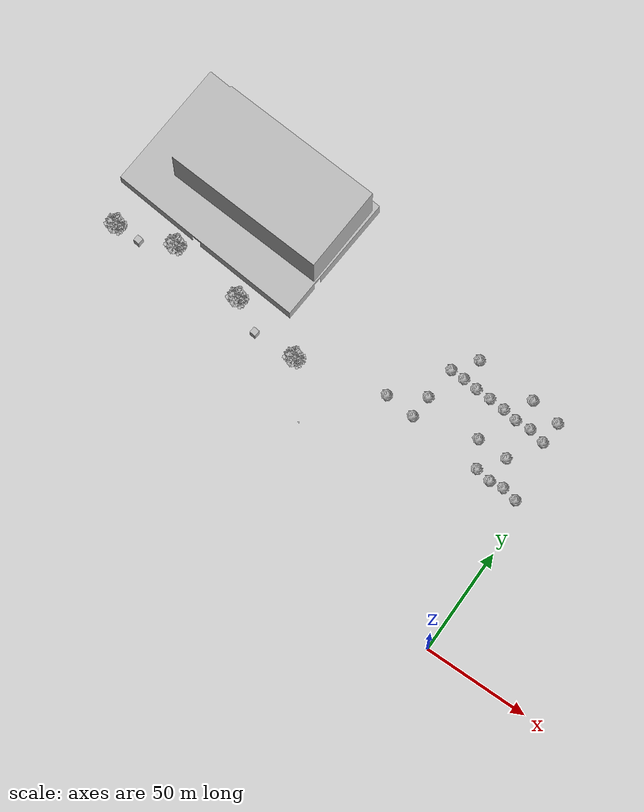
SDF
<sdf version="1.7">
 <world name="default">
  <include>
   <uri>model://momo</uri>
   <pose>-101.465143 50.128662 0.403297 0.000031 0.013149 -3.049204</pose>
  </include>
  <model name="cityhall_box">
   <static>1</static>
   <link name="link">
    <collision name="collision">
     <geometry><mesh><uri>model://cityhall_box/meshes/cityhall_box.dae</uri></mesh></geometry>
    </collision>
    <visual name="visual">
     <geometry><mesh><uri>model://cityhall_box/meshes/cityhall_box.dae</uri></mesh></geometry>
    </visual>
   </link>
   <pose>-139.446 71.3705 0 0 -0 0</pose>
  </model>
  <model name="cityhall_box_0">
   <static>1</static>
   <link name="link">
    <collision name="collision">
     <geometry><mesh><uri>model://cityhall_box/meshes/cityhall_box.dae</uri></mesh></geometry>
    </collision>
    <visual name="visual">
     <geometry><mesh><uri>model://cityhall_box/meshes/cityhall_box.dae</uri></mesh></geometry>
    </visual>
   </link>
   <pose>-204.406 76.3517 0 0 -0 0</pose>
  </model>
  <model name="cityhall">
   <static>1</static>
   <link name="link">
    <collision name="collision">
     <geometry>
      <mesh><uri>model://cityhall/meshes/cityhall.dae</uri><scale>0.8052 0.8052 0.8052</scale></mesh>
     </geometry>
    </collision>
    <visual name="visual">
     <geometry>
      <mesh><uri>model://cityhall/meshes/cityhall.dae</uri><scale>0.8052 0.8052 0.8052</scale></mesh>
     </geometry>
    </visual>
   </link>
   <pose>-171.893 123.643 0 0 -0 0</pose>
  </model>
  <model name="Tree_4_94">
   <static>1</static>
   <pose>-118.787 71.9931 0 0 -0 0</pose>
   <link name="Tree_4">
    <visual name="Tree_4"><geometry><mesh><uri>model://Tree_4/Tree_4.dae</uri></mesh></geometry></visual>
    <collision name="Tree_4"><geometry><mesh><uri>model://Tree_4/Tree_4.dae</uri></mesh></geometry></collision>
   </link>
  </model>
  <model name="Tree_4_95">
   <static>1</static>
   <pose>-154.302 79.812 0 0 -0 0</pose>
   <link name="Tree_4">
    <visual name="Tree_4"><geometry><mesh><uri>model://Tree_4/Tree_4.dae</uri></mesh></geometry></visual>
    <collision name="Tree_4"><geometry><mesh><uri>model://Tree_4/Tree_4.dae</uri></mesh></geometry></collision>
   </link>
  </model>
  <model name="Tree_4_96">
   <static>1</static>
   <pose>-189.904 83.9243 0 0 -0 0</pose>
   <link name="Tree_4">
    <visual name="Tree_4"><geometry><mesh><uri>model://Tree_4/Tree_4.dae</uri></mesh></geometry></visual>
    <collision name="Tree_4"><geometry><mesh><uri>model://Tree_4/Tree_4.dae</uri></mesh></geometry></collision>
   </link>
  </model>
  <model name="Tree_4_97">
   <static>1</static>
   <pose>-216.657 76.7299 0 0 -0 0</pose>
   <link name="Tree_4">
    <visual name="Tree_4"><geometry><mesh><uri>model://Tree_4/Tree_4.dae</uri></mesh></geometry></visual>
    <collision name="Tree_4"><geometry><mesh><uri>model://Tree_4/Tree_4.dae</uri></mesh></geometry></collision>
   </link>
  </model>
  <model name="Tree_3_50">
   <static>1</static>
   <pose>-18.3109 87.5223 0 0 -0 0</pose>
   <link name="Tree_3">
    <visual name="Tree_3"><geometry><mesh><uri>model://Tree_3/Tree.dae</uri></mesh></geometry></visual>
    <collision name="Tree_3"><geometry><mesh><uri>model://Tree_3/Tree.dae</uri></mesh></geometry></collision>
   </link>
  </model>
  <model name="Tree_3_51">
   <static>1</static>
   <pose>-33.0142 87.6679 0 0 -0 0</pose>
   <link name="Tree_3">
    <visual name="Tree_3"><geometry><mesh><uri>model://Tree_3/Tree.dae</uri></mesh></geometry></visual>
    <collision name="Tree_3"><geometry><mesh><uri>model://Tree_3/Tree.dae</uri></mesh></geometry></collision>
   </link>
  </model>
  <model name="Tree_3_52">
   <static>1</static>
   <pose>-8.5683 112.741 0 0 -0 0</pose>
   <link name="Tree_3">
    <visual name="Tree_3"><geometry><mesh><uri>model://Tree_3/Tree.dae</uri></mesh></geometry></visual>
    <collision name="Tree_3"><geometry><mesh><uri>model://Tree_3/Tree.dae</uri></mesh></geometry></collision>
   </link>
  </model>
  <model name="Tree_3_53">
   <static>1</static>
   <pose>-23.0086 115 0 0 -0 0</pose>
   <link name="Tree_3">
    <visual name="Tree_3"><geometry><mesh><uri>model://Tree_3/Tree.dae</uri></mesh></geometry></visual>
    <collision name="Tree_3"><geometry><mesh><uri>model://Tree_3/Tree.dae</uri></mesh></geometry></collision>
   </link>
  </model>
  <model name="Tree_3_54">
   <static>1</static>
   <pose>-51.9034 116.622 0 0 -0 0</pose>
   <link name="Tree_3">
    <visual name="Tree_3"><geometry><mesh><uri>model://Tree_3/Tree.dae</uri></mesh></geometry></visual>
    <collision name="Tree_3"><geometry><mesh><uri>model://Tree_3/Tree.dae</uri></mesh></geometry></collision>
   </link>
  </model>
  <model name="Tree_3_55">
   <static>1</static>
   <pose>-59.6369 106.135 0 0 -0 0</pose>
   <link name="Tree_3">
    <visual name="Tree_3"><geometry><mesh><uri>model://Tree_3/Tree.dae</uri></mesh></geometry></visual>
    <collision name="Tree_3"><geometry><mesh><uri>model://Tree_3/Tree.dae</uri></mesh></geometry></collision>
   </link>
  </model>
  <model name="Tree_3_56">
   <static>1</static>
   <pose>-52.9401 106.008 0 0 -0 0</pose>
   <link name="Tree_3">
    <visual name="Tree_3"><geometry><mesh><uri>model://Tree_3/Tree.dae</uri></mesh></geometry></visual>
    <collision name="Tree_3"><geometry><mesh><uri>model://Tree_3/Tree.dae</uri></mesh></geometry></collision>
   </link>
  </model>
  <model name="Tree_3_57">
   <static>1</static>
   <pose>-46.0505 105.401 0 0 -0 0</pose>
   <link name="Tree_3">
    <visual name="Tree_3"><geometry><mesh><uri>model://Tree_3/Tree.dae</uri></mesh></geometry></visual>
    <collision name="Tree_3"><geometry><mesh><uri>model://Tree_3/Tree.dae</uri></mesh></geometry></collision>
   </link>
  </model>
  <model name="Tree_3_58">
   <static>1</static>
   <pose>-38.7504 105.13 0 0 -0 0</pose>
   <link name="Tree_3">
    <visual name="Tree_3"><geometry><mesh><uri>model://Tree_3/Tree.dae</uri></mesh></geometry></visual>
    <collision name="Tree_3"><geometry><mesh><uri>model://Tree_3/Tree.dae</uri></mesh></geometry></collision>
   </link>
  </model>
  <model name="Tree_3_59">
   <static>1</static>
   <pose>-24.3825 103.636 0 0 -0 0</pose>
   <link name="Tree_3">
    <visual name="Tree_3"><geometry><mesh><uri>model://Tree_3/Tree.dae</uri></mesh></geometry></visual>
    <collision name="Tree_3"><geometry><mesh><uri>model://Tree_3/Tree.dae</uri></mesh></geometry></collision>
   </link>
  </model>
  <model name="Tree_3_60">
   <static>1</static>
   <pose>-31.2103 104.674 0 0 -0 0</pose>
   <link name="Tree_3">
    <visual name="Tree_3"><geometry><mesh><uri>model://Tree_3/Tree.dae</uri></mesh></geometry></visual>
    <collision name="Tree_3"><geometry><mesh><uri>model://Tree_3/Tree.dae</uri></mesh></geometry></collision>
   </link>
  </model>
  <model name="Tree_3_61">
   <static>1</static>
   <pose>-16.9523 103.855 0 0 -0 0</pose>
   <link name="Tree_3">
    <visual name="Tree_3"><geometry><mesh><uri>model://Tree_3/Tree.dae</uri></mesh></geometry></visual>
    <collision name="Tree_3"><geometry><mesh><uri>model://Tree_3/Tree.dae</uri></mesh></geometry></collision>
   </link>
  </model>
  <model name="Tree_3_62">
   <static>1</static>
   <pose>-9.24663 102.156 0 0 -0 0</pose>
   <link name="Tree_3">
    <visual name="Tree_3"><geometry><mesh><uri>model://Tree_3/Tree.dae</uri></mesh></geometry></visual>
    <collision name="Tree_3"><geometry><mesh><uri>model://Tree_3/Tree.dae</uri></mesh></geometry></collision>
   </link>
  </model>
  <model name="Tree_3_63">
   <static>1</static>
   <pose>-4.95108 74.4495 0 0 -0 0</pose>
   <link name="Tree_3">
    <visual name="Tree_3"><geometry><mesh><uri>model://Tree_3/Tree.dae</uri></mesh></geometry></visual>
    <collision name="Tree_3"><geometry><mesh><uri>model://Tree_3/Tree.dae</uri></mesh></geometry></collision>
   </link>
  </model>
  <model name="Tree_3_64">
   <static>1</static>
   <pose>-12.2284 76.0016 0 0 -0 0</pose>
   <link name="Tree_3">
    <visual name="Tree_3"><geometry><mesh><uri>model://Tree_3/Tree.dae</uri></mesh></geometry></visual>
    <collision name="Tree_3"><geometry><mesh><uri>model://Tree_3/Tree.dae</uri></mesh></geometry></collision>
   </link>
  </model>
  <model name="Tree_3_65">
   <static>1</static>
   <pose>-18.7563 75.2849 0 0 -0 0</pose>
   <link name="Tree_3">
    <visual name="Tree_3"><geometry><mesh><uri>model://Tree_3/Tree.dae</uri></mesh></geometry></visual>
    <collision name="Tree_3"><geometry><mesh><uri>model://Tree_3/Tree.dae</uri></mesh></geometry></collision>
   </link>
  </model>
  <model name="Tree_3_66">
   <static>1</static>
   <pose>-26.1791 76.4532 0 0 -0 0</pose>
   <link name="Tree_3">
    <visual name="Tree_3"><geometry><mesh><uri>model://Tree_3/Tree.dae</uri></mesh></geometry></visual>
    <collision name="Tree_3"><geometry><mesh><uri>model://Tree_3/Tree.dae</uri></mesh></geometry></collision>
   </link>
  </model>
  <model name="Tree_3_67">
   <static>1</static>
   <pose>-61.1319 90.672 0 0 -0 0</pose>
   <link name="Tree_3">
    <visual name="Tree_3"><geometry><mesh><uri>model://Tree_3/Tree.dae</uri></mesh></geometry></visual>
    <collision name="Tree_3"><geometry><mesh><uri>model://Tree_3/Tree.dae</uri></mesh></geometry></collision>
   </link>
  </model>
  <model name="Tree_3_68">
   <static>1</static>
   <pose>-61.9954 79.9344 0 0 -0 0</pose>
   <link name="Tree_3">
    <visual name="Tree_3"><geometry><mesh><uri>model://Tree_3/Tree.dae</uri></mesh></geometry></visual>
    <collision name="Tree_3"><geometry><mesh><uri>model://Tree_3/Tree.dae</uri></mesh></geometry></collision>
   </link>
  </model>
  <model name="Tree_3_69">
   <static>1</static>
   <pose>-76.4079 81.211 0 0 -0 0</pose>
   <link name="Tree_3">
    <visual name="Tree_3"><geometry><mesh><uri>model://Tree_3/Tree.dae</uri></mesh></geometry></visual>
    <collision name="Tree_3"><geometry><mesh><uri>model://Tree_3/Tree.dae</uri></mesh></geometry></collision>
   </link>
  </model>
 </world>
</sdf>
